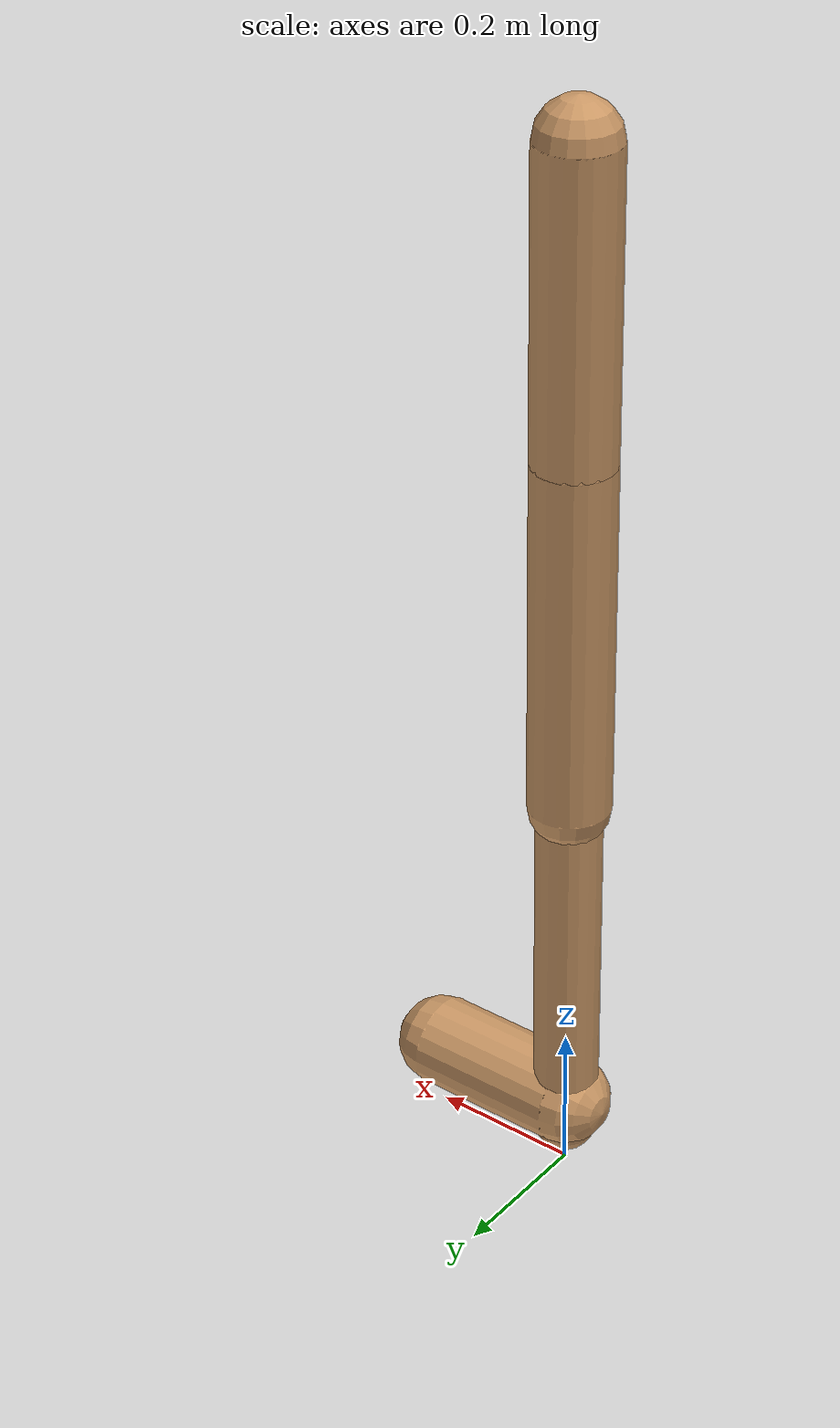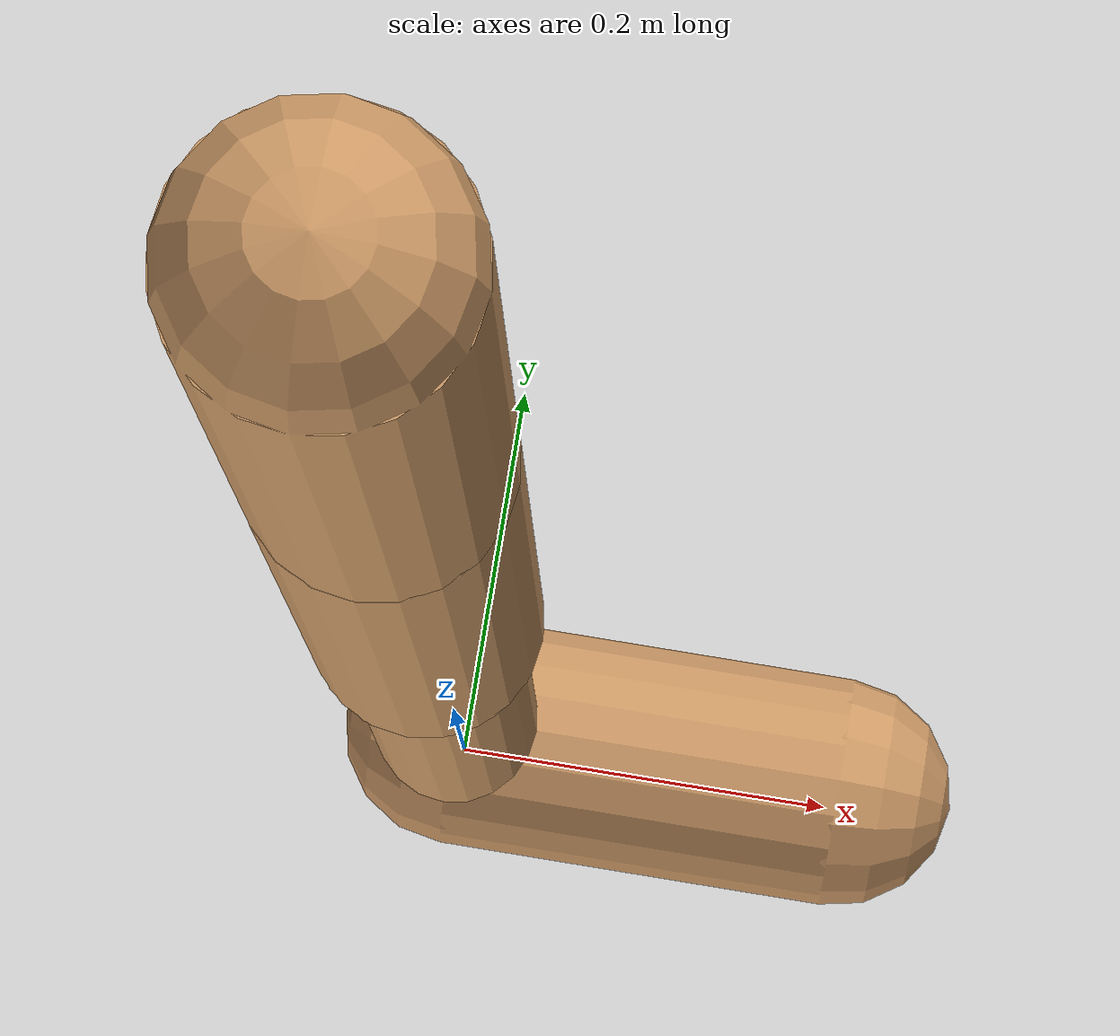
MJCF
<mujoco model="walker2d">
  <compiler angle="degree" coordinate="global" inertiafromgeom="true" />
  <default>
    <joint armature="0.01" damping=".1" limited="true" />
    <geom conaffinity="0" condim="3" contype="1" density="1000" friction="0.8 .1 .1" rgba="0.8 0.6 .4 1" />
  </default>
  <option integrator="RK4" timestep="0.002" />
  <worldbody>

    <body name="torso" pos="0 0 0.0651535410140102">
      <joint armature="0" axis="1 0 0" damping="0" limited="false" name="ignorex" pos="0 0 0" stiffness="0" type="slide" />
      <joint armature="0" axis="0 0 1" damping="0" limited="false" name="ignorez" pos="0 0 0" ref="1.25" stiffness="0" type="slide" />
      <joint armature="0" axis="0 1 0" damping="0" limited="false" name="ignorey" pos="0 0 0" stiffness="0" type="hinge" />
      <geom fromto="0 0 1.45 0 0 1.05" name="torso_geom" size="0.05366649393758025" type="capsule" />
      <body name="thigh">
        <joint axis="0 -1 0" name="thigh_joint" pos="0 0 1.05" range="-150 0" type="hinge" />
        <geom fromto="0.0 0.0 1.05 0.0 0.0 0.5691377963617846" name="thigh_geom" size="0.05378939627109232" type="capsule" />
        <body name="leg" pos="0.0 0.0 -0.030862203638215346">
          <joint axis="0 -1 0" name="leg_joint" pos="0 0 0.6" range="-150 0" type="hinge" />
          <geom fromto="0.0 0.0 0.6 0.0 0.0 0.06570866262420516" name="leg_geom" size="0.043031517016873855" type="capsule" />
          <body name="foot" pos="0.0 0.0 -0.034291337375794845">
            <joint axis="0 -1 0" name="foot_joint" pos="0 0 0.1" range="-45 45" type="hinge" />
            <geom fromto="-0.0 0.0 0.1 0.2039382328036107 0.0 0.1" name="foot_geom" size="0.06083232105135247" type="capsule" />
          </body>
        </body>
      </body>

      <body name="thigh_left">
        <joint axis="0 -1 0" name="thigh_left_joint" pos="0 0 1.05" range="-150 0" type="hinge" />
        <geom fromto="0.0 0.0 1.05 0.0 0.0 0.5691377963617846" name="thigh_left_geom" rgba=".7 .3 .6 1" size="0.05378939627109232" type="capsule" />
        <body name="leg_left" pos="0.0 0.0 -0.030862203638215346">
          <joint axis="0 -1 0" name="leg_left_joint" pos="0 0 0.6" range="-150 0" type="hinge" />
          <geom fromto="0.0 0.0 0.6 0.0 0.0 0.06570866262420516" name="leg_left_geom" rgba=".7 .3 .6 1" size="0.043031517016873855" type="capsule" />
          <body name="foot_left" pos="0.0 0.0 -0.034291337375794845">
            <joint axis="0 -1 0" name="foot_left_joint" pos="0 0 0.1" range="-45 45" type="hinge" />
            <geom fromto="-0.0 0.0 0.1 0.2039382328036107 0.0 0.1" name="foot_left_geom" rgba=".7 .3 .6 1" size="0.06083232105135247" type="capsule" />
          </body>
        </body>
      </body>
    </body>
  </worldbody>
  <actuator>

    <motor ctrllimited="true" ctrlrange="-1.0 1.0" gear="100" joint="thigh_joint" />
    <motor ctrllimited="true" ctrlrange="-1.0 1.0" gear="100" joint="leg_joint" />
    <motor ctrllimited="true" ctrlrange="-1.0 1.0" gear="100" joint="foot_joint" />
    <motor ctrllimited="true" ctrlrange="-1.0 1.0" gear="100" joint="thigh_left_joint" />
    <motor ctrllimited="true" ctrlrange="-1.0 1.0" gear="100" joint="leg_left_joint" />
    <motor ctrllimited="true" ctrlrange="-1.0 1.0" gear="100" joint="foot_left_joint" />

  </actuator>
</mujoco>
